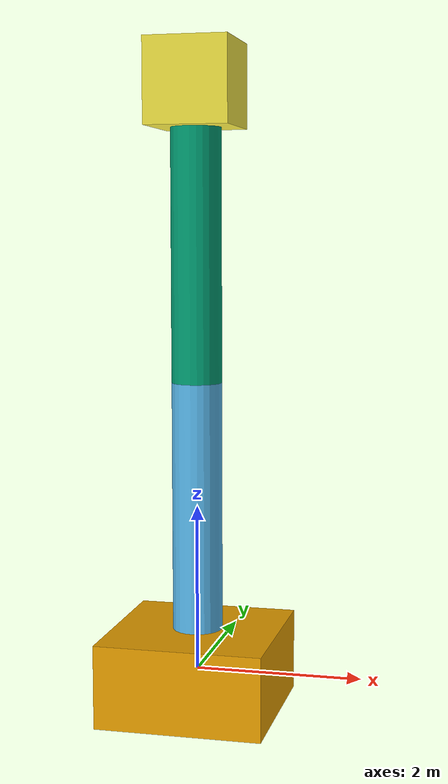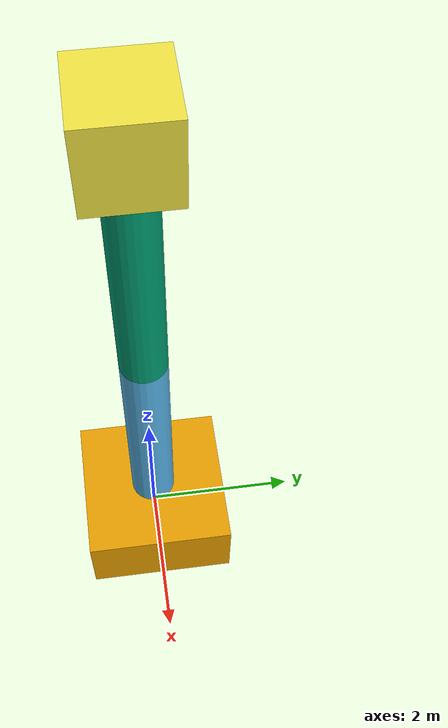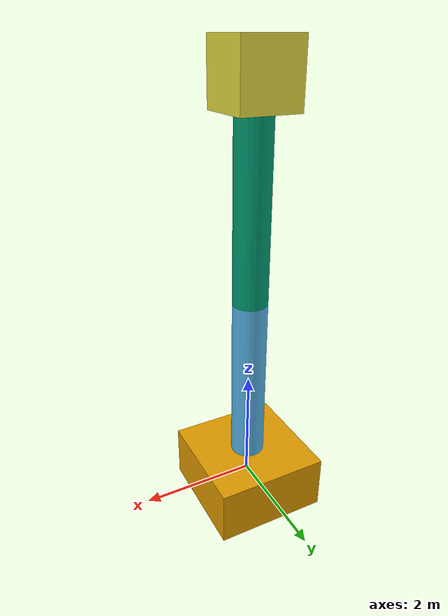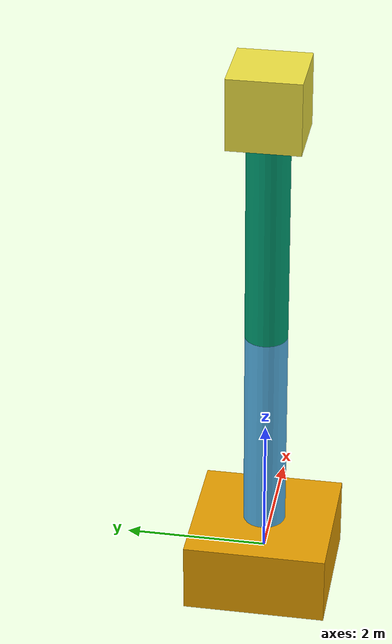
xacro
<?xml version="1.0" ?>

<robot name="excavator" xmlns:xacro="http://www.ros.org/wiki/xacro">
    <link name="base_link_00">
        <visual>
            <origin rpy="0 0 0" xyz="0 0 0"/>
            <geometry>
                <box size="2 2 1"/>
            </geometry>
        </visual>
    </link>

    <joint name="base_link_00__link_01" type="revolute">
        <axis xyz="0 1 0"/>
        <limit effort="1000.0" lower="-3.14" upper="3.14" velocity="0.5"/>
        <origin rpy="0 0 0" xyz="0 0 0.5"/>
        <parent link="base_link_00"/>
        <child link="link_01"/>
    </joint>

    <link name="link_01">
        <visual>
            <origin rpy="0 0 0" xyz="0 0 1.5"/>
            <geometry>
                <cylinder radius="0.3" length="3"/>
            </geometry>
        </visual>
    </link>

    <joint name="link_01_link_02" type="revolute">
        <axis xyz="0 1 0"/>
        <limit effort="1000.0" lower="-3.14" upper="3.14" velocity="0.5"/>
        <origin rpy="0 0 0" xyz="0 0 3"/>
        <parent link="link_01"/>
        <child link="link_02"/>
    </joint>

    <link name="link_02">
        <visual>
            <origin rpy="0 0 0" xyz="0 0 1.5"/>
            <geometry>
                <cylinder radius="0.3" length="3"/>
            </geometry>
        </visual>
    </link>

    <joint name="link_02_link_03" type="revolute">
        <axis xyz="0 1 0"/>
        <limit effort="1000.0" lower="-3.14" upper="3.14" velocity="0.5"/>
        <origin rpy="0 0 0" xyz="0 0 3"/>
        <parent link="link_02"/>
        <child link="link_03"/>
    </joint>

    <link name="link_03">
        <visual>
            <origin rpy="0 0 0" xyz="0 0 0.5"/>
            <geometry>
                <box size="1 1 1"/>
            </geometry>
        </visual>
    </link>

</robot>
